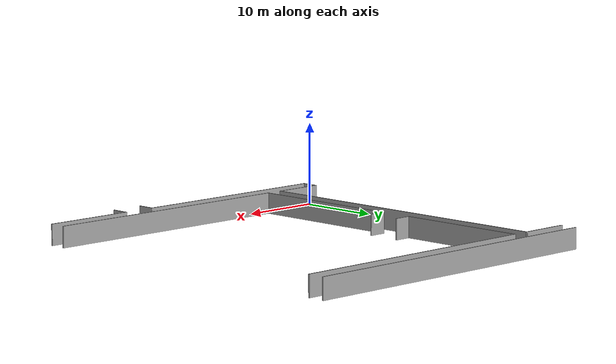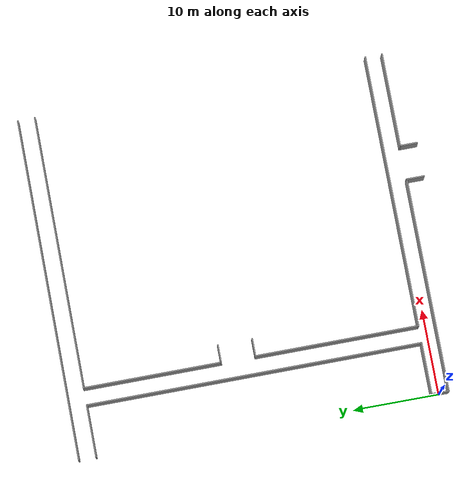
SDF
<?xml version='1.0'?>
<sdf version='1.7'>
  <model name='Untitled'>
    <pose>20 19.5 0 0 -0 0</pose>
    <link name='Wall_11'>
      <collision name='Wall_11_Collision'>
        <geometry>
          <box>
            <size>19.15 0.15 2.5</size>
          </box>
        </geometry>
        <pose>0 0 1.25 0 -0 0</pose>
      </collision>
      <visual name='Wall_11_Visual'>
        <pose>0 0 1.25 0 -0 0</pose>
        <geometry>
          <box>
            <size>19.15 0.15 2.5</size>
          </box>
        </geometry>
        <material>
          <script>
            <uri>file://media/materials/scripts/gazebo.material</uri>
            <name>Gazebo/Grey</name>
          </script>
          <ambient>1 1 1 1</ambient>
        </material>
        <meta>
          <layer>0</layer>
        </meta>
      </visual>
      <pose>-12 -9 0 0 -0 1.5708</pose>
    </link>
    <link name='Wall_13'>
      <collision name='Wall_13_Collision'>
        <geometry>
          <box>
            <size>32.15 0.15 2.5</size>
          </box>
        </geometry>
        <pose>0 0 1.25 0 -0 0</pose>
      </collision>
      <visual name='Wall_13_Visual'>
        <pose>0 0 1.25 0 -0 0</pose>
        <geometry>
          <box>
            <size>32.15 0.15 2.5</size>
          </box>
        </geometry>
        <material>
          <script>
            <uri>file://media/materials/scripts/gazebo.material</uri>
            <name>Gazebo/Grey</name>
          </script>
          <ambient>1 1 1 1</ambient>
        </material>
        <meta>
          <layer>0</layer>
        </meta>
      </visual>
      <pose>4 -18.535 0 0 -0 0</pose>
    </link>
    <link name='Wall_15'>
      <collision name='Wall_15_Collision'>
        <geometry>
          <box>
            <size>2.15 0.15 2.5</size>
          </box>
        </geometry>
        <pose>0 0 1.25 0 -0 0</pose>
      </collision>
      <visual name='Wall_15_Visual'>
        <pose>0 0 1.25 0 -0 0</pose>
        <geometry>
          <box>
            <size>2.15 0.15 2.5</size>
          </box>
        </geometry>
        <material>
          <script>
            <uri>file://media/materials/scripts/gazebo.material</uri>
            <name>Gazebo/Grey</name>
          </script>
          <ambient>1 1 1 1</ambient>
        </material>
        <meta>
          <layer>0</layer>
        </meta>
      </visual>
      <pose>5 -21.5 0 0 -0 -1.5708</pose>
    </link>
    <link name='Wall_17'>
      <collision name='Wall_17_Collision'>
        <geometry>
          <box>
            <size>2.15 0.15 2.5</size>
          </box>
        </geometry>
        <pose>0 0 1.25 0 -0 0</pose>
      </collision>
      <visual name='Wall_17_Visual'>
        <pose>0 0 1.25 0 -0 0</pose>
        <geometry>
          <box>
            <size>2.15 0.15 2.5</size>
          </box>
        </geometry>
        <material>
          <script>
            <uri>file://media/materials/scripts/gazebo.material</uri>
            <name>Gazebo/Grey</name>
          </script>
          <ambient>1 1 1 1</ambient>
        </material>
        <meta>
          <layer>0</layer>
        </meta>
      </visual>
      <pose>9 -21.5 0 0 -0 -1.5708</pose>
    </link>
    <link name='Wall_19'>
      <collision name='Wall_19_Collision'>
        <geometry>
          <box>
            <size>11.15 0.15 2.5</size>
          </box>
        </geometry>
        <pose>0 0 1.25 0 -0 0</pose>
      </collision>
      <visual name='Wall_19_Visual'>
        <pose>0 0 1.25 0 -0 0</pose>
        <geometry>
          <box>
            <size>11.15 0.15 2.5</size>
          </box>
        </geometry>
        <material>
          <script>
            <uri>file://media/materials/scripts/gazebo.material</uri>
            <name>Gazebo/Grey</name>
          </script>
          <ambient>1 1 1 1</ambient>
        </material>
        <meta>
          <layer>0</layer>
        </meta>
      </visual>
      <pose>14.5 -20.5 0 0 -0 0</pose>
    </link>
    <link name='Wall_21'>
      <collision name='Wall_21_Collision'>
        <geometry>
          <box>
            <size>2.15 0.15 2.5</size>
          </box>
        </geometry>
        <pose>0 0 1.25 0 -0 0</pose>
      </collision>
      <visual name='Wall_21_Visual'>
        <pose>0 0 1.25 0 -0 0</pose>
        <geometry>
          <box>
            <size>2.15 0.15 2.5</size>
          </box>
        </geometry>
        <material>
          <script>
            <uri>file://media/materials/scripts/gazebo.material</uri>
            <name>Gazebo/Grey</name>
          </script>
          <ambient>1 1 1 1</ambient>
        </material>
        <meta>
          <layer>0</layer>
        </meta>
      </visual>
      <pose>-11 0.5 0 0 -0 0</pose>
    </link>
    <link name='Wall_23'>
      <collision name='Wall_23_Collision'>
        <geometry>
          <box>
            <size>2.15 0.15 2.5</size>
          </box>
        </geometry>
        <pose>0 0 1.25 0 -0 0</pose>
      </collision>
      <visual name='Wall_23_Visual'>
        <pose>0 0 1.25 0 -0 0</pose>
        <geometry>
          <box>
            <size>2.15 0.15 2.5</size>
          </box>
        </geometry>
        <material>
          <script>
            <uri>file://media/materials/scripts/gazebo.material</uri>
            <name>Gazebo/Grey</name>
          </script>
          <ambient>1 1 1 1</ambient>
        </material>
        <meta>
          <layer>0</layer>
        </meta>
      </visual>
      <pose>-11 4.5 0 0 -0 0</pose>
    </link>
    <link name='Wall_25'>
      <collision name='Wall_25_Collision'>
        <geometry>
          <box>
            <size>16.15 0.15 2.5</size>
          </box>
        </geometry>
        <pose>0 0 1.25 0 -0 0</pose>
      </collision>
      <visual name='Wall_25_Visual'>
        <pose>0 0 1.25 0 -0 0</pose>
        <geometry>
          <box>
            <size>16.15 0.15 2.5</size>
          </box>
        </geometry>
        <material>
          <script>
            <uri>file://media/materials/scripts/gazebo.material</uri>
            <name>Gazebo/Grey</name>
          </script>
          <ambient>1 1 1 1</ambient>
        </material>
        <meta>
          <layer>0</layer>
        </meta>
      </visual>
      <pose>-12 12.5 0 0 -0 1.5708</pose>
    </link>
    <link name='Wall_27'>
      <collision name='Wall_27_Collision'>
        <geometry>
          <box>
            <size>6.15 0.15 2.5</size>
          </box>
        </geometry>
        <pose>0 0 1.25 0 -0 0</pose>
      </collision>
      <visual name='Wall_27_Visual'>
        <pose>0 0 1.25 0 -0 0</pose>
        <geometry>
          <box>
            <size>6.15 0.15 2.5</size>
          </box>
        </geometry>
        <material>
          <script>
            <uri>file://media/materials/scripts/gazebo.material</uri>
            <name>Gazebo/Grey</name>
          </script>
          <ambient>1 1 1 1</ambient>
        </material>
        <meta>
          <layer>0</layer>
        </meta>
      </visual>
      <pose>-17 20.5 0 0 -0 0</pose>
    </link>
    <link name='Wall_29'>
      <collision name='Wall_29_Collision'>
        <geometry>
          <box>
            <size>40.15 0.15 2.5</size>
          </box>
        </geometry>
        <pose>0 0 1.25 0 -0 0</pose>
      </collision>
      <visual name='Wall_29_Visual'>
        <pose>0 0 1.25 0 -0 0</pose>
        <geometry>
          <box>
            <size>40.15 0.15 2.5</size>
          </box>
        </geometry>
        <material>
          <script>
            <uri>file://media/materials/scripts/gazebo.material</uri>
            <name>Gazebo/Grey</name>
          </script>
          <ambient>1 1 1 1</ambient>
        </material>
        <meta>
          <layer>0</layer>
        </meta>
      </visual>
      <pose>0 22.5 0 0 -0 0</pose>
    </link>
    <link name='Wall_3'>
      <collision name='Wall_3_Collision'>
        <geometry>
          <box>
            <size>6.15 0.15 2.5</size>
          </box>
        </geometry>
        <pose>0 0 1.25 0 -0 0</pose>
      </collision>
      <visual name='Wall_3_Visual'>
        <pose>0 0 1.25 0 -0 0</pose>
        <geometry>
          <box>
            <size>6.15 0.15 2.5</size>
          </box>
        </geometry>
        <material>
          <script>
            <uri>file://media/materials/scripts/gazebo.material</uri>
            <name>Gazebo/Grey</name>
          </script>
          <ambient>1 1 1 1</ambient>
        </material>
        <meta>
          <layer>0</layer>
        </meta>
      </visual>
      <pose>-17 -18.5 0 0 -0 0</pose>
    </link>
    <link name='Wall_31'>
      <collision name='Wall_31_Collision'>
        <geometry>
          <box>
            <size>32.15 0.15 2.5</size>
          </box>
        </geometry>
        <pose>0 0 1.25 0 -0 0</pose>
      </collision>
      <visual name='Wall_31_Visual'>
        <pose>0 0 1.25 0 -0 0</pose>
        <geometry>
          <box>
            <size>32.15 0.15 2.5</size>
          </box>
        </geometry>
        <material>
          <script>
            <uri>file://media/materials/scripts/gazebo.material</uri>
            <name>Gazebo/Grey</name>
          </script>
          <ambient>1 1 1 1</ambient>
        </material>
        <meta>
          <layer>0</layer>
        </meta>
      </visual>
      <pose>4 20.5 0 0 -0 0</pose>
    </link>
    <link name='Wall_5'>
      <collision name='Wall_5_Collision'>
        <geometry>
          <box>
            <size>25.15 0.15 2.5</size>
          </box>
        </geometry>
        <pose>0 0 1.25 0 -0 0</pose>
      </collision>
      <visual name='Wall_5_Visual'>
        <pose>0 0 1.25 0 -0 0</pose>
        <geometry>
          <box>
            <size>25.15 0.15 2.5</size>
          </box>
        </geometry>
        <material>
          <script>
            <uri>file://media/materials/scripts/gazebo.material</uri>
            <name>Gazebo/Grey</name>
          </script>
          <ambient>1 1 1 1</ambient>
        </material>
        <meta>
          <layer>0</layer>
        </meta>
      </visual>
      <pose>-7.5 -20.5 0 0 -0 0</pose>
    </link>
    <link name='Wall_7'>
      <collision name='Wall_7_Collision'>
        <geometry>
          <box>
            <size>2.15 0.15 2.5</size>
          </box>
        </geometry>
        <pose>0 0 1.25 0 -0 0</pose>
      </collision>
      <visual name='Wall_7_Visual'>
        <pose>0 0 1.25 0 -0 0</pose>
        <geometry>
          <box>
            <size>2.15 0.15 2.5</size>
          </box>
        </geometry>
        <material>
          <script>
            <uri>file://media/materials/scripts/gazebo.material</uri>
            <name>Gazebo/Grey</name>
          </script>
          <ambient>1 1 1 1</ambient>
        </material>
        <meta>
          <layer>0</layer>
        </meta>
      </visual>
      <pose>-20 -19.5 0 0 -0 -1.5708</pose>
    </link>
    <link name='Wall_9'>
      <collision name='Wall_9_Collision'>
        <geometry>
          <box>
            <size>39.15 0.15 2.5</size>
          </box>
        </geometry>
        <pose>0 0 1.25 0 -0 0</pose>
      </collision>
      <visual name='Wall_9_Visual'>
        <pose>0 0 1.25 0 -0 0</pose>
        <geometry>
          <box>
            <size>39.15 0.15 2.5</size>
          </box>
        </geometry>
        <material>
          <script>
            <uri>file://media/materials/scripts/gazebo.material</uri>
            <name>Gazebo/Grey</name>
          </script>
          <ambient>1 1 1 1</ambient>
        </material>
        <meta>
          <layer>0</layer>
        </meta>
      </visual>
      <pose>-14 1 0 0 -0 1.5708</pose>
    </link>
    <static>1</static>
  </model>
</sdf>
